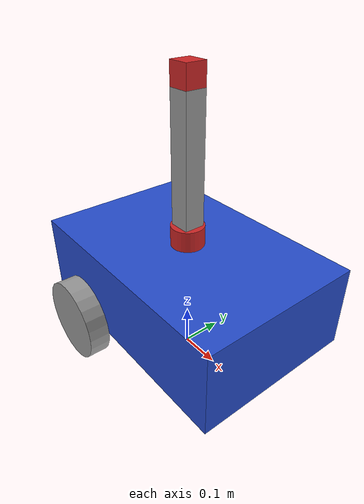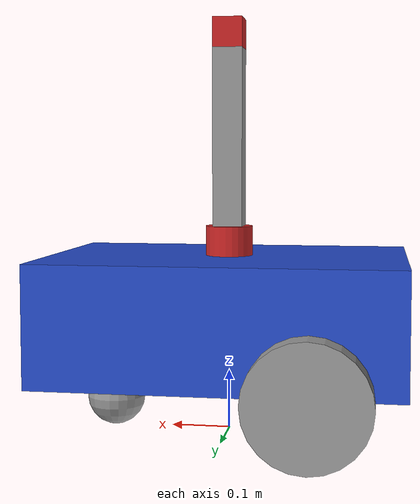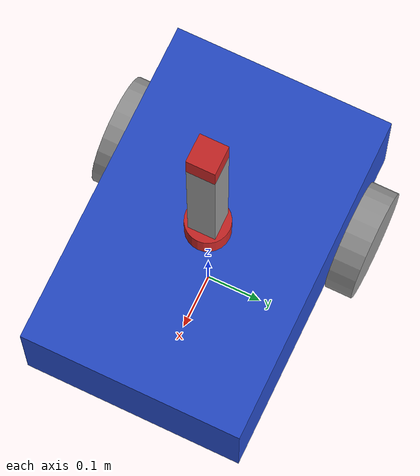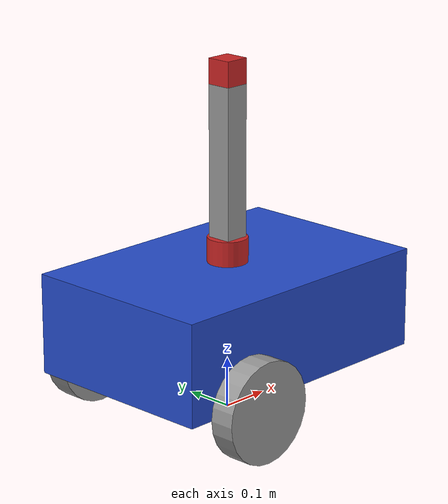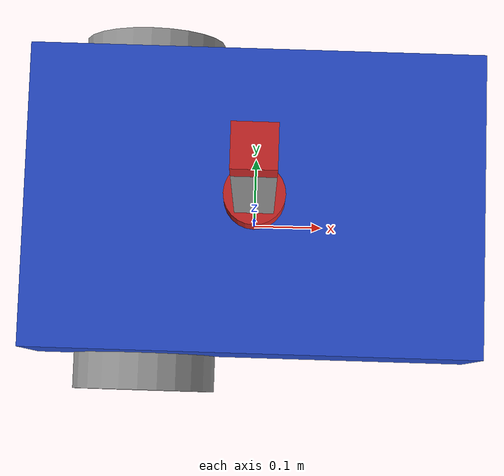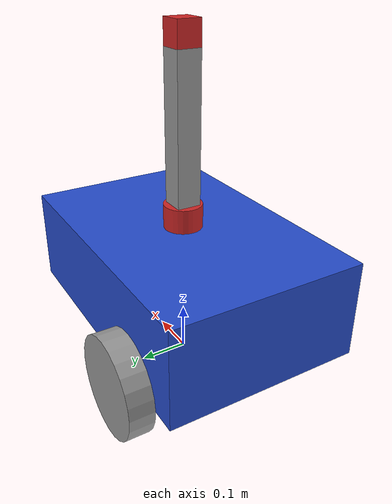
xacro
<?xml version="1.0"?>
<robot xmlns:xacro="http://www.ros.org/wiki/xacro">

    <xacro:property name="base_length" value="0.6" />
    <xacro:property name="base_width" value="0.4" />
    <xacro:property name="base_height" value="0.2" />
    <xacro:property name="wheel_radius" value="0.1" />
    <xacro:property name="wheel_length" value="0.05" />

    <link name="base_footprint" />

    <link name="base_link">
        <visual>
            <geometry>
                <box size="${base_length} ${base_width} ${base_height}" />
            </geometry>
            <origin xyz="0 0 ${base_height / 2.0}" rpy="0 0 0" />
            <material name="blue" />
        </visual>
        <collision>
            <geometry>
                <box size="${base_length} ${base_width} ${base_height}" />
            </geometry>
            <origin xyz="0 0 ${base_height / 2.0}" rpy="0 0 0" />
        </collision>
        <inertial>
            <origin xyz="0 0 ${base_height / 2.0}" rpy="0 0 0"/>
            <mass value="5.0"/>
            <inertia
            ixx="0.1" ixy="0.0" ixz="0.0"
            iyy="0.1" iyz="0.0"
            izz="0.1"/>
        </inertial>
    </link>

    <xacro:macro name="wheel_link" params="prefix">
        <link name="${prefix}_wheel_link">
            <visual>
                <geometry>
                    <cylinder radius="${wheel_radius}" length="${wheel_length}" />
                </geometry>
                <origin xyz="0 0 0" rpy="${pi / 2.0} 0 0" />
                <material name="grey" />
            </visual>
            <collision>
                <geometry>
                    <cylinder radius="${wheel_radius}" length="${wheel_length}" />
                </geometry>
                <origin xyz="0 0 0" rpy="${pi / 2.0} 0 0" />
            </collision>
            <inertial>
                <origin xyz="0 0 0" rpy="0 0 0"/>
                <mass value="0.5"/>
                <inertia
                    ixx="0.001" ixy="0.0" ixz="0.0"
                    iyy="0.001" iyz="0.0"
                    izz="0.001"/>
            </inertial>
        </link>
    </xacro:macro>

    <xacro:wheel_link prefix="right" />
    <xacro:wheel_link prefix="left" />

    <link name="caster_wheel_link">
        <visual>
            <geometry>
                <sphere radius="${wheel_radius / 2.0}" />
            </geometry>
            <origin xyz="0 0 0" rpy="0 0 0" />
            <material name="grey" />
        </visual>
        <collision>
            <geometry>
                <sphere radius="${wheel_radius / 2.0}" />
            </geometry>
        </collision>
        <inertial>
            <origin xyz="0 0 0" rpy="0 0 0"/>
            <mass value="0.2"/>
            <inertia
                ixx="0.0005" ixy="0.0" ixz="0.0"
                iyy="0.0005" iyz="0.0"
                izz="0.0005"/>
        </inertial>
    </link>

    <joint name="base_joint" type="fixed">
        <parent link="base_footprint" />
        <child link="base_link" />
        <origin xyz="0 0 ${wheel_radius}" rpy="0 0 0"/>
    </joint>

    <joint name="base_right_wheel_joint" type="continuous">
        <parent link="base_link" />
        <child link="right_wheel_link" />
        <origin xyz="${-base_length / 4.0} ${-(base_width + wheel_length) / 2.0} 0" rpy="0 0 0" />
        <axis xyz="0 1 0" />
    </joint>

    <joint name="base_left_wheel_joint" type="continuous">
        <parent link="base_link" />
        <child link="left_wheel_link" />
        <origin xyz="${-base_length / 4.0} ${(base_width + wheel_length) / 2.0} 0" rpy="0 0 0" />
        <axis xyz="0 1 0" />
    </joint>

    <joint name="base_caster_wheel_joint" type="fixed">
        <parent link="base_link" />
        <child link="caster_wheel_link" />
        <origin xyz="${base_length / 3.0} 0 ${-wheel_radius / 2.0}" rpy="0 0 0" />
    </joint>

    <link name="arm_link">
        <visual>
            <geometry>
                <box size="0.05 0.05 0.3"/>
            </geometry>
            <origin xyz="0 0 0.15"/>
            <material name="grey"/>
        </visual>
        <collision>
            <geometry>
                <box size="0.05 0.05 0.3"/>
            </geometry>
            <origin xyz="0 0 0.15"/>
        </collision>
        <inertial>
            <origin xyz="0 0 0.15" rpy="0 0 0"/>
            <mass value="1.0"/>
            <inertia
                ixx="0.01" ixy="0.0" ixz="0.0"
                iyy="0.01" iyz="0.0"
                izz="0.01"/>
        </inertial>
    </link>

    <joint name="arm_joint" type="revolute">
        <parent link="base_link"/>
        <child link="arm_link"/>
        <origin xyz="0 0 ${base_height + 0.05}" rpy="0 0 0"/>
        <axis xyz="0 1 0"/>

        <limit lower="-1.57"
           upper="1.57"
           effort="10"
           velocity="1"/>
    </joint>

    <link name="camera_link">
        <visual>
            <geometry>
                <box size="0.05 0.05 0.05"/>
            </geometry>
            <material name="red"/>
        </visual>
        <collision>
            <geometry>
                <box size="0.05 0.05 0.05"/>
            </geometry>
        </collision>
        <inertial>
            <origin xyz="0 0 0" rpy="0 0 0"/>
            <mass value="0.1"/>
            <inertia
                ixx="0.0001" ixy="0.0" ixz="0.0"
                iyy="0.0001" iyz="0.0"
                izz="0.0001"/>
        </inertial>
    </link>

    <joint name="camera_joint" type="fixed">
        <parent link="arm_link"/>
        <child link="camera_link"/>
        <origin xyz="0 0 0.325" rpy="0 0 0"/>
    </joint>

    <link name="lidar_link">
        <visual>
            <geometry>
                <cylinder radius="0.04" length="0.05"/>
            </geometry>
            <material name="red"/>
        </visual>
        <collision>
            <geometry>
                <cylinder radius="0.04" length="0.05"/>
            </geometry>
        </collision>
        <inertial>
            <origin xyz="0 0 0" rpy="0 0 0"/>
            <mass value="0.2"/>
            <inertia
                ixx="0.0002" ixy="0.0" ixz="0.0"
                iyy="0.0002" iyz="0.0"
                izz="0.0002"/>
        </inertial>
    </link>

    <joint name="lidar_joint" type="fixed">
        <parent link="base_link"/>
        <child link="lidar_link"/>
        <origin xyz="0 0 ${base_height+0.025}"/>
    </joint>

    <link name="imu_link">
        <collision>
            <geometry>
                <box size="0.02 0.02 0.01"/>
            </geometry>
        </collision>

        <inertial>
            <origin xyz="0 0 0" rpy="0 0 0"/>
            <mass value="0.05"/>
            <inertia
                ixx="0.00001" ixy="0.0" ixz="0.0"
                iyy="0.00001" iyz="0.0"
                izz="0.00001"/>
        </inertial>
    </link>

    <joint name="imu_joint" type="fixed">
        <parent link="base_link"/>
        <child link="imu_link"/>
        <origin xyz="0 0 ${base_height/2.0}"/>
    </joint>

    <gazebo reference="camera_link">
        <sensor name="camera" type="camera">
            <topic>/camera/image_raw</topic>
            <update_rate>15</update_rate>

            <camera>
                <horizontal_fov>1.047</horizontal_fov>

                <image>
                    <width>320</width>
                    <height>240</height>
                    <format>R8G8B8</format>
                </image>

                <clip>
                    <near>0.02</near>
                    <far>300</far>
                </clip>
            </camera>

            <always_on>true</always_on>
            <visualize>true</visualize>
        </sensor>
    </gazebo>

    <gazebo reference="lidar_link">
        <sensor name="gpu_lidar" type="gpu_lidar">
            <always_on>true</always_on>
            <update_rate>10</update_rate>
            <visualize>true</visualize>
            <topic>scan</topic>
            <lidar>
                <scan>
                    <horizontal>
                    <samples>360</samples>
                    <resolution>1</resolution>
                    <min_angle>-3.14159</min_angle>
                    <max_angle>3.14159</max_angle>
                    </horizontal>
                </scan>
                <range>
                    <min>0.08</min>
                    <max>10.0</max>
                    <resolution>0.01</resolution>
                </range>
            </lidar>
        </sensor>
    </gazebo>

    <gazebo reference="imu_link">
        <sensor name="imu_sensor" type="imu">
            <always_on>1</always_on>
            <update_rate>100</update_rate>
            <visualize>true</visualize>
            <topic>imu</topic>
        </sensor>
    </gazebo>

    <ros2_control name="RoverControl" type="system">
        <hardware>
            <plugin>gz_ros2_control/GazeboSimSystem</plugin>
        </hardware>
        <joint name="arm_joint">
            <command_interface name="position"/>
            <state_interface name="position"/>
            <state_interface name="velocity"/>
        </joint>
    </ros2_control>

    <gazebo>
        <plugin filename="ignition-gazebo-diff-drive-system" name="ignition::gazebo::systems::DiffDrive">
            <left_joint>base_left_wheel_joint</left_joint>
            <right_joint>base_right_wheel_joint</right_joint>
            <wheel_separation>0.45</wheel_separation>
            <wheel_radius>0.1</wheel_radius>
            <odom_publish_frequency>50</odom_publish_frequency>
            <topic>cmd_vel</topic>

            <publish_odom>true</publish_odom>
            <publish_odom_tf>true</publish_odom_tf>
            <publish_wheel_tf>true</publish_wheel_tf>

            <left_wheel_frame>left_wheel_link</left_wheel_frame>
            <right_wheel_frame>right_wheel_link</right_wheel_frame>

            <frame_id>odom</frame_id>
            <child_frame_id>base_footprint</child_frame_id>
        </plugin>
    </gazebo>

    <gazebo>
        <plugin filename="gz_ros2_control-system" name="gz_ros2_control::GazeboSimROS2ControlPlugin">
        <parameters>$(find robot)/config/robot_controllers.yaml</parameters>
        </plugin>
    </gazebo>

    <gazebo reference="caster_wheel_link">
        <mu1>0.0</mu1>
        <mu2>0.0</mu2>
        <kp>1000000.0</kp>
        <kd>1.0</kd>
    </gazebo>

    <gazebo reference="left_wheel_link">
        <mu1>1.5</mu1>
        <mu2>1.5</mu2>
    </gazebo>

    <gazebo reference="right_wheel_link">
        <mu1>1.5</mu1>
        <mu2>1.5</mu2>
    </gazebo>

</robot>
